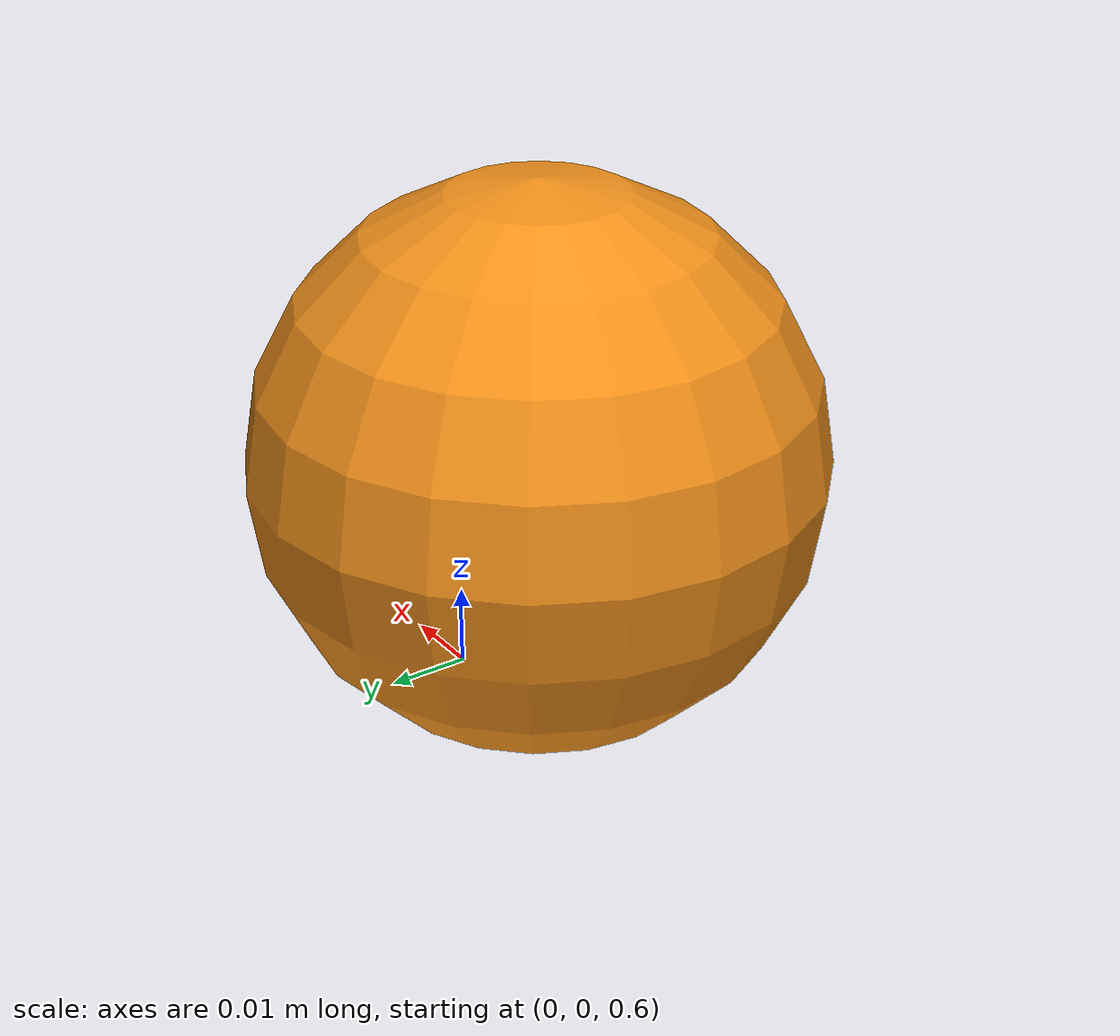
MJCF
<mujoco model="leap hand inhand rotation scene">
  <statistic center="0 0 0.52" extent="0.35"/>
  <visual>
    <headlight diffuse="0.6 0.6 0.6" ambient="0.3 0.3 0.3" specular="0 0 0"/>
    <rgba haze="0.15 0.25 0.35 1"/>
    <global azimuth="135" elevation="-25"/>
  </visual>
  <asset>
    <texture type="skybox" builtin="gradient" rgb1="0.20 0.32 0.48"
             rgb2="0.04 0.07 0.12" width="512" height="3072"/>
    <texture type="2d" name="rotation_ground_tex" builtin="checker" mark="edge"
             rgb1="0.18 0.34 0.52" rgb2="0.08 0.20 0.34"
             markrgb="0.40 0.58 0.74" width="512" height="512"/>
    <material name="rotation_ground" texture="rotation_ground_tex"
              texuniform="true" texrepeat="12 12" reflectance="0.15"/>
    <texture type="2d" name="rotation_ball_tex" builtin="checker"
             rgb1="0.92 0.30 0.08" rgb2="0.96 0.82 0.12"
             width="256" height="256"/>
    <material name="rotation_ball" texture="rotation_ball_tex"
              texuniform="false" reflectance="0.08"/>
  </asset>
  <worldbody>
    <light pos="0 0 1.5" dir="0 0 -1" directional="true"/>
    <geom name="floor" pos="0 0 0" size="0 0 0.05" type="plane"
          material="rotation_ground"/>
    <body name="ball" pos="-0.013583 -0.002142 0.633196">
      <freejoint name="ball_joint"/>
      <geom name="ball" type="sphere" size="0.0335" mass="0.05" condim="6"
            friction="2.0 0.05 0.01" solimp="0.95 0.99 0.001" solref="0.01 1"
            margin="0.0002" material="rotation_ball"/>
    </body>
  </worldbody>
  <sensor>
    <contact name="leap_ff_contact" geom1="fingertip_collision"
             geom2="ball" data="found" num="1" reduce="mindist"/>
    <contact name="leap_mf_contact" geom1="fingertip_2_collision"
             geom2="ball" data="found" num="1" reduce="mindist"/>
    <contact name="leap_rf_contact" geom1="fingertip_3_collision"
             geom2="ball" data="found" num="1" reduce="mindist"/>
    <contact name="leap_th_contact" geom1="thumb_fingertip_collision"
             geom2="ball" data="found" num="1" reduce="mindist"/>
    <contact name="leap_rotation_palm_contact" geom1="palm_lower_collision"
             geom2="ball" data="found" num="1" reduce="mindist"/>
    <!-- Pad pose sensors are shared by LEAP cache diagnostics on both backends. -->
    <framepos name="leap_rotation_ff_pad_pos" objtype="site" objname="ff_pad_center"/>
    <framepos name="leap_rotation_ff_pad_normal_pos" objtype="site" objname="ff_pad_normal"/>
    <framepos name="leap_rotation_mf_pad_pos" objtype="site" objname="mf_pad_center"/>
    <framepos name="leap_rotation_mf_pad_normal_pos" objtype="site" objname="mf_pad_normal"/>
    <framepos name="leap_rotation_rf_pad_pos" objtype="site" objname="rf_pad_center"/>
    <framepos name="leap_rotation_rf_pad_normal_pos" objtype="site" objname="rf_pad_normal"/>
    <framepos name="leap_rotation_th_pad_pos" objtype="site" objname="th_pad_center"/>
    <framepos name="leap_rotation_th_pad_normal_pos" objtype="site" objname="th_pad_normal"/>
  </sensor>
  <keyframe>
    <key name="home"
      qpos="1.55532424 0.0598731564 -0.0916072427 0.246610854 1.1714141 0.0206472142 0.13212833 0.180057563 1.30064258 0.0804042038 0.22756733 0.595859175 1.36396476 1.12269354 1.06511281 0.958824984 -0.0292368292 0.0432013736 0.623655749 0.99979831 0.00687406255 -0.0116827555 -0.014818905"
      ctrl="1.55532424 0.0598731564 -0.0916072427 0.246610854 1.1714141 0.0206472142 0.13212833 0.180057563 1.30064258 0.0804042038 0.22756733 0.595859175 1.36396476 1.12269354 1.06511281 0.958824984"/>
  </keyframe>
</mujoco>
